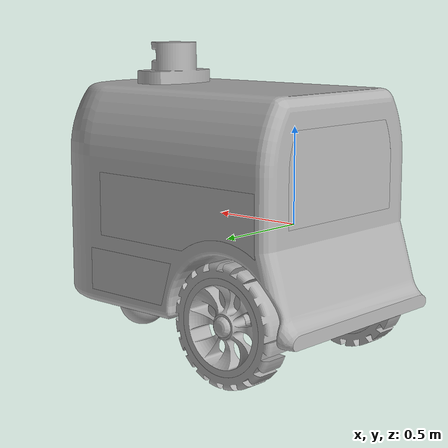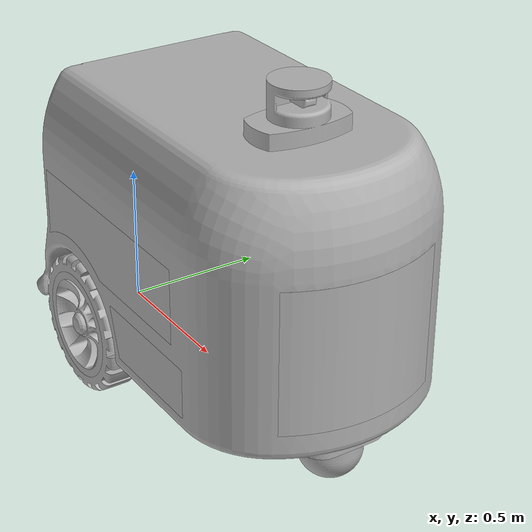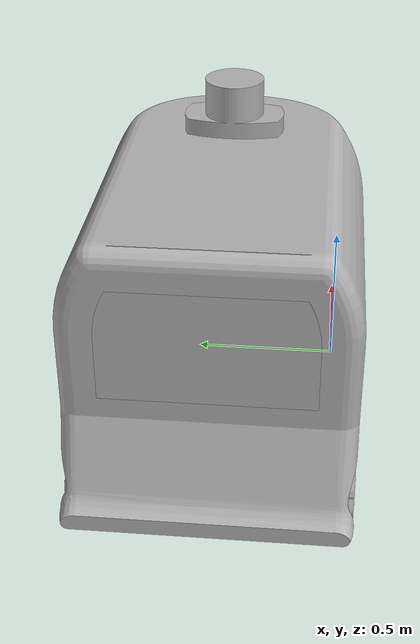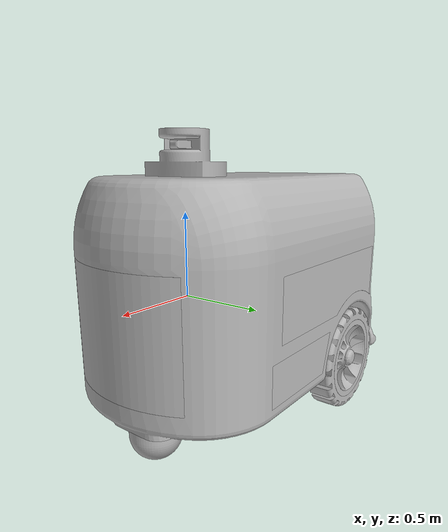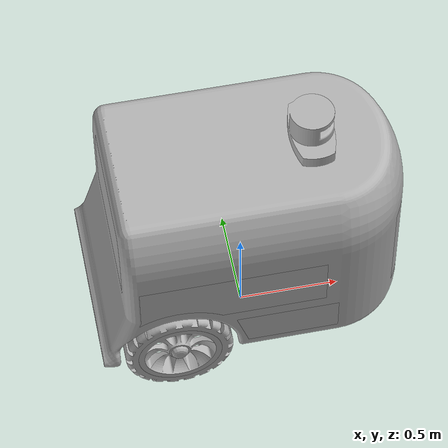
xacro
<?xml version="1.0" ?>
<robot name="mobot" xmlns:xacro="http://www.ros.org/wiki/xacro">

<xacro:include filename="$(find mobot_description)/urdf/materials.xacro" />
<xacro:include filename="$(find mobot_description)/urdf/mobot.trans" />
<xacro:include filename="$(find mobot_description)/urdf/mobot.gazebo" />

<link name="dummy">
</link>

<link name="base_link">
  <inertial>
    <origin rpy="0 0 0" xyz="-0.026455219422411323 0.40968939827626377 0.04163234966670218"/>
    <mass value="3150.9106588680847"/>
    <inertia ixx="635.995618" ixy="-0.81772" ixz="-67.456188" iyy="1022.549178" iyz="-0.044342" izz="982.507872"/>
  </inertial>
  <visual>
    <origin rpy="0 0 0" xyz="0 0 0"/>
    <geometry>
      <mesh filename="package://mobot_description/meshes/base_link.stl" scale="0.001 0.001 0.001"/>
    </geometry>
    <material name="silver"/>
  </visual>
  <collision>
    <origin rpy="0 0 0" xyz="0 0 0"/>
    <geometry>
      <mesh filename="package://mobot_description/meshes/base_link.stl" scale="0.001 0.001 0.001"/>
    </geometry>
  </collision>
</link>

<link name="wh_2_1">
  <inertial>
    <origin rpy="0 0 0" xyz="3.1312147969753124e-05 -0.04374636663590059 0.00010103681154749466"/>
    <mass value="22.585878116572662"/>
    <inertia ixx="0.392865" ixy="7e-06" ixz="8.3e-05" iyy="0.740577" iyz="-0.0" izz="0.392894"/>
  </inertial>
  <visual>
    <origin rpy="0 0 0" xyz="0.336826 -0.903121 0.27965"/>
    <geometry>
      <mesh filename="package://mobot_description/meshes/wh_2_1.stl" scale="0.001 0.001 0.001"/>
    </geometry>
    <material name="silver"/>
  </visual>
  <collision>
    <origin rpy="0 0 0" xyz="0.336826 -0.903121 0.27965"/>
    <geometry>
      <mesh filename="package://mobot_description/meshes/wh_2_1.stl" scale="0.001 0.001 0.001"/>
    </geometry>
  </collision>
</link>

<link name="wh_1_1">
  <inertial>
    <origin rpy="0 0 0" xyz="3.1300030676417734e-05 0.043746268411519205 0.00010103050810311709"/>
    <mass value="22.58582872362095"/>
    <inertia ixx="0.392865" ixy="-7e-06" ixz="8.3e-05" iyy="0.740575" iyz="0.0" izz="0.392893"/>
  </inertial>
  <visual>
    <origin rpy="0 0 0" xyz="0.336826 0.084379 0.27965"/>
    <geometry>
      <mesh filename="package://mobot_description/meshes/wh_1_1.stl" scale="0.001 0.001 0.001"/>
    </geometry>
    <material name="silver"/>
  </visual>
  <collision>
    <origin rpy="0 0 0" xyz="0.336826 0.084379 0.27965"/>
    <geometry>
      <mesh filename="package://mobot_description/meshes/wh_1_1.stl" scale="0.001 0.001 0.001"/>
    </geometry>
  </collision>
</link>

<link name="ty_1_1">
  <inertial>
    <origin rpy="0 0 0" xyz="-4.140859787837847e-07 0.06344168470022572 -2.1716540271610185e-07"/>
    <mass value="1.1469070073401872"/>
    <inertia ixx="0.03685" ixy="0.0" ixz="0.0" iyy="0.070789" iyz="0.0" izz="0.03685"/>
  </inertial>
  <visual>
    <origin rpy="0 0 0" xyz="0.336826 0.103129 0.27965"/>
    <geometry>
      <mesh filename="package://mobot_description/meshes/ty_1_1.stl" scale="0.001 0.001 0.001"/>
    </geometry>
    <material name="silver"/>
  </visual>
  <collision>
    <origin rpy="0 0 0" xyz="0.336826 0.103129 0.27965"/>
    <geometry>
      <mesh filename="package://mobot_description/meshes/ty_1_1.stl" scale="0.001 0.001 0.001"/>
    </geometry>
  </collision>
</link>

<link name="ty_2_1">
  <inertial>
    <origin rpy="0 0 0" xyz="-5.315133068672928e-07 -0.06344178181047777 -1.7160374848890214e-07"/>
    <mass value="1.1469058380153243"/>
    <inertia ixx="0.03685" ixy="-0.0" ixz="0.0" iyy="0.070789" iyz="0.0" izz="0.03685"/>
  </inertial>
  <visual>
    <origin rpy="0 0 0" xyz="0.336826 -0.921871 0.27965"/>
    <geometry>
      <mesh filename="package://mobot_description/meshes/ty_2_1.stl" scale="0.001 0.001 0.001"/>
    </geometry>
    <material name="silver"/>
  </visual>
  <collision>
    <origin rpy="0 0 0" xyz="0.336826 -0.921871 0.27965"/>
    <geometry>
      <mesh filename="package://mobot_description/meshes/ty_2_1.stl" scale="0.001 0.001 0.001"/>
    </geometry>
  </collision>
</link>

<link name="castor_1">
  <inertial>
    <origin rpy="0 0 0" xyz="6.103319483141689e-08 -4.667545749903468e-08 -0.07589255509540493"/>
    <mass value="56.19482952954398"/>
    <inertia ixx="0.316051" ixy="0.0" ixz="0.0" iyy="0.316051" iyz="0.0" izz="0.388848"/>
  </inertial>
  <visual>
    <origin rpy="0 0 0" xyz="-0.68229 -0.409371 0.373403"/>
    <geometry>
      <mesh filename="package://mobot_description/meshes/castor_1.stl" scale="0.001 0.001 0.001"/>
    </geometry>
    <material name="silver"/>
  </visual>
  <collision>
    <origin rpy="0 0 0" xyz="-0.68229 -0.409371 0.373403"/>
    <geometry>
      <mesh filename="package://mobot_description/meshes/castor_1.stl" scale="0.001 0.001 0.001"/>
    </geometry>
  </collision>
</link>

<link name="Lidar_1">
  <inertial>
    <origin rpy="0 0 0" xyz="-0.004649646644218297 -4.128141434245336e-08 0.07900227655614012"/>
    <mass value="69.79790090631205"/>
    <inertia ixx="0.709975" ixy="-0.0" ixz="0.018831" iyy="0.464713" iyz="-0.0" izz="0.691542"/>
  </inertial>
  <visual>
    <origin rpy="0 0 0" xyz="-0.439712 -0.409371 -0.717709"/>
    <geometry>
      <mesh filename="package://mobot_description/meshes/Lidar_1.stl" scale="0.001 0.001 0.001"/>
    </geometry>
    <material name="silver"/>
  </visual>
  <collision>
    <origin rpy="0 0 0" xyz="-0.439712 -0.409371 -0.717709"/>
    <geometry>
      <mesh filename="package://mobot_description/meshes/Lidar_1.stl" scale="0.001 0.001 0.001"/>
    </geometry>
  </collision>
</link>

<link name="fw_1">
  <inertial>
    <origin rpy="0 0 0" xyz="-0.06263561471993406 0.000180168104896683 -0.2841628642191586"/>
    <mass value="28.347081991217703"/>
    <inertia ixx="1.775049" ixy="-0.009746" ixz="-0.0" iyy="0.795658" iyz="-0.0" izz="1.04472"/>
  </inertial>
  <visual>
    <origin rpy="0 0 0" xyz="-0.908977 -0.40367 -0.371549"/>
    <geometry>
      <mesh filename="package://mobot_description/meshes/fw_1.stl" scale="0.001 0.001 0.001"/>
    </geometry>
    <material name="silver"/>
  </visual>
  <collision>
    <origin rpy="0 0 0" xyz="-0.908977 -0.40367 -0.371549"/>
    <geometry>
      <mesh filename="package://mobot_description/meshes/fw_1.stl" scale="0.001 0.001 0.001"/>
    </geometry>
  </collision>
</link>

<link name="bw_1">
  <inertial>
    <origin rpy="0 0 0" xyz="0.006250413681586298 -4.667545805414619e-08 -0.2119126601641136"/>
    <mass value="29.960334499031035"/>
    <inertia ixx="1.766091" ixy="-0.0" ixz="0.0" iyy="0.428193" iyz="0.0" izz="1.338678"/>
  </inertial>
  <visual>
    <origin rpy="0 0 0" xyz="0.598983 -0.409371 -0.578504"/>
    <geometry>
      <mesh filename="package://mobot_description/meshes/bw_1.stl" scale="0.001 0.001 0.001"/>
    </geometry>
    <material name="silver"/>
  </visual>
  <collision>
    <origin rpy="0 0 0" xyz="0.598983 -0.409371 -0.578504"/>
    <geometry>
      <mesh filename="package://mobot_description/meshes/bw_1.stl" scale="0.001 0.001 0.001"/>
    </geometry>
  </collision>
</link>

<link name="sw2_1">
  <inertial>
    <origin rpy="0 0 0" xyz="0.024512866232685143 0.006249953324542382 -0.13941821214026714"/>
    <mass value="25.796768244619983"/>
    <inertia ixx="0.174666" ixy="-0.0" ixz="0.081495" iyy="2.087163" iyz="0.0" izz="1.91317"/>
  </inertial>
  <visual>
    <origin rpy="0 0 0" xyz="0.052952 0.103129 -0.326635"/>
    <geometry>
      <mesh filename="package://mobot_description/meshes/sw2_1.stl" scale="0.001 0.001 0.001"/>
    </geometry>
    <material name="silver"/>
  </visual>
  <collision>
    <origin rpy="0 0 0" xyz="0.052952 0.103129 -0.326635"/>
    <geometry>
      <mesh filename="package://mobot_description/meshes/sw2_1.stl" scale="0.001 0.001 0.001"/>
    </geometry>
  </collision>
</link>

<link name="sw1_1">
  <inertial>
    <origin rpy="0 0 0" xyz="0.024512866232685133 -0.006250046675457477 -0.13941821214026712"/>
    <mass value="25.796768244620132"/>
    <inertia ixx="0.174666" ixy="0.0" ixz="0.081495" iyy="2.087163" iyz="0.0" izz="1.91317"/>
  </inertial>
  <visual>
    <origin rpy="0 0 0" xyz="0.052952 -0.921871 -0.326635"/>
    <geometry>
      <mesh filename="package://mobot_description/meshes/sw1_1.stl" scale="0.001 0.001 0.001"/>
    </geometry>
    <material name="silver"/>
  </visual>
  <collision>
    <origin rpy="0 0 0" xyz="0.052952 -0.921871 -0.326635"/>
    <geometry>
      <mesh filename="package://mobot_description/meshes/sw1_1.stl" scale="0.001 0.001 0.001"/>
    </geometry>
  </collision>
</link>

<link name="sd1_1">
  <inertial>
    <origin rpy="0 0 0" xyz="0.015202593766192568 -0.006250046675457477 -0.09922891411246615"/>
    <mass value="9.970459309140876"/>
    <inertia ixx="0.034204" ixy="0.0" ixz="0.00522" iyy="0.244584" iyz="-0.0" izz="0.210639"/>
  </inertial>
  <visual>
    <origin rpy="0 0 0" xyz="-0.226839 -0.921871 0.041915"/>
    <geometry>
      <mesh filename="package://mobot_description/meshes/sd1_1.stl" scale="0.001 0.001 0.001"/>
    </geometry>
    <material name="silver"/>
  </visual>
  <collision>
    <origin rpy="0 0 0" xyz="-0.226839 -0.921871 0.041915"/>
    <geometry>
      <mesh filename="package://mobot_description/meshes/sd1_1.stl" scale="0.001 0.001 0.001"/>
    </geometry>
  </collision>
</link>

<link name="sd2_1">
  <inertial>
    <origin rpy="0 0 0" xyz="0.01520259376619254 0.006249953324542382 -0.09922891411246618"/>
    <mass value="9.97045930914082"/>
    <inertia ixx="0.034204" ixy="-0.0" ixz="0.00522" iyy="0.244584" iyz="0.0" izz="0.210639"/>
  </inertial>
  <visual>
    <origin rpy="0 0 0" xyz="-0.226839 0.103129 0.041915"/>
    <geometry>
      <mesh filename="package://mobot_description/meshes/sd2_1.stl" scale="0.001 0.001 0.001"/>
    </geometry>
    <material name="silver"/>
  </visual>
  <collision>
    <origin rpy="0 0 0" xyz="-0.226839 0.103129 0.041915"/>
    <geometry>
      <mesh filename="package://mobot_description/meshes/sd2_1.stl" scale="0.001 0.001 0.001"/>
    </geometry>
  </collision>
</link>

<joint name="Rev1" type="continuous">
  <origin rpy="0 0 0" xyz="-0.336826 0.903121 -0.27965"/>
  <parent link="base_link"/>
  <child link="wh_2_1"/>
  <axis xyz="0.0 1.0 0.0"/>
</joint>

<joint name="Rev2" type="continuous">
  <origin rpy="0 0 0" xyz="-0.336826 -0.084379 -0.27965"/>
  <parent link="base_link"/>
  <child link="wh_1_1"/>
  <axis xyz="0.0 1.0 0.0"/>
</joint>

<joint name="Rigid3" type="fixed">
  <origin rpy="0 0 0" xyz="0.0 -0.01875 0.0"/>
  <parent link="wh_1_1"/>
  <child link="ty_1_1"/>
</joint>

<joint name="Rigid4" type="fixed">
  <origin rpy="0 0 0" xyz="0.0 0.01875 0.0"/>
  <parent link="wh_2_1"/>
  <child link="ty_2_1"/>
</joint>

<joint name="Rigid5" type="fixed">
  <origin rpy="0 0 0" xyz="0.68229 0.409371 -0.373403"/>
  <parent link="base_link"/>
  <child link="castor_1"/>
</joint>

<joint name="Rigid6" type="fixed">
  <origin rpy="0 0 0" xyz="0.439712 0.409371 0.717709"/>
  <parent link="base_link"/>
  <child link="Lidar_1"/>
</joint>

<joint name="Rigid7" type="fixed">
  <origin rpy="0 0 0" xyz="0.908977 0.40367 0.371549"/>
  <parent link="base_link"/>
  <child link="fw_1"/>
</joint>

<joint name="Rigid8" type="fixed">
  <origin rpy="0 0 0" xyz="-0.598983 0.409371 0.578504"/>
  <parent link="base_link"/>
  <child link="bw_1"/>
</joint>

<joint name="Rigid9" type="fixed">
  <origin rpy="0 0 0" xyz="-0.052952 -0.103129 0.326635"/>
  <parent link="base_link"/>
  <child link="sw2_1"/>
</joint>

<joint name="Rigid10" type="fixed">
  <origin rpy="0 0 0" xyz="-0.052952 0.921871 0.326635"/>
  <parent link="base_link"/>
  <child link="sw1_1"/>
</joint>

<joint name="Rigid11" type="fixed">
  <origin rpy="0 0 0" xyz="0.226839 0.921871 -0.041915"/>
  <parent link="base_link"/>
  <child link="sd1_1"/>
</joint>

<joint name="Rigid12" type="fixed">
  <origin rpy="0 0 0" xyz="0.226839 -0.103129 -0.041915"/>
  <parent link="base_link"/>
  <child link="sd2_1"/>
</joint>

<joint name="dummy_joint" type="fixed">
     <parent link="dummy"/>
     <child link="base_link"/>
</joint>

</robot>

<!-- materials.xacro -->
<robot name="mobot" xmlns:xacro="http://www.ros.org/wiki/xacro" >

<material name="silver">
  <color rgba="0.700 0.700 0.700 1.000"/>
</material>

</robot>

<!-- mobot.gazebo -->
<robot name="mobot" xmlns:xacro="http://www.ros.org/wiki/xacro" >

<xacro:property name="body" value="Gazebo/Red" />
<xacro:property name="wheel" value="Gazebo/Chrome" />
<xacro:property name="tyre" value="Gazebo/Black" />
<xacro:property name="fw" value="Gazebo/GreenTransparent " />
<xacro:property name="bw" value="Gazebo/GreenTransparent " />
<xacro:property name="sw" value="Gazebo/GreenTransparent " />
<xacro:property name="sw2" value="Gazebo/GreenTransparent " />
<xacro:property name="sd" value="Gazebo/Black" />
<xacro:property name="sd2" value="Gazebo/RedTransparent" />
<xacro:property name="castor" value="Gazebo/Silver" />
<xacro:property name="lidar" value="Gazebo/Black" />

<gazebo reference="base_link">
  <material>${body}</material>
  <mu1>0.2</mu1>
  <mu2>0.2</mu2>
  <selfCollide>true</selfCollide>
  <gravity>true</gravity>
</gazebo>

<gazebo reference="wh_2_1">
  <material>${wheel}</material>
  <mu1>0.2</mu1>
  <mu2>0.2</mu2>
  <selfCollide>true</selfCollide>
</gazebo>

<gazebo reference="wh_1_1">
  <material>${wheel}</material>
  <mu1>0.2</mu1>
  <mu2>0.2</mu2>
  <selfCollide>true</selfCollide>
</gazebo>

<gazebo reference="ty_1_1">
  <material>${tyre}</material>
  <mu1>1</mu1>
  <mu2>1</mu2>
  <selfCollide>true</selfCollide>
</gazebo>

<gazebo reference="ty_2_1">
  <material>${tyre}</material>
  <mu1>1</mu1>
  <mu2>1</mu2>
  <selfCollide>true</selfCollide>
</gazebo>

<gazebo reference="castor_1">
  <material>${castor}</material>
  <mu1>0.2</mu1>
  <mu2>0.2</mu2>
  <selfCollide>true</selfCollide>
</gazebo>

<gazebo reference="Lidar_1">
  <material>${lidar}</material>
  <mu1>0.2</mu1>
  <mu2>0.2</mu2>
  <selfCollide>true</selfCollide>
</gazebo>

<gazebo reference="fw_1">
  <material>${fw}</material>
  <mu1>0.2</mu1>
  <mu2>0.2</mu2>
  <selfCollide>true</selfCollide>
</gazebo>

<gazebo reference="sw1_1">
  <material>${sw}</material>
  <mu1>0.2</mu1>
  <mu2>0.2</mu2>
  <selfCollide>true</selfCollide>
</gazebo>

<gazebo reference="sd1_1">
  <material>${sd}</material>
  <mu1>0.2</mu1>
  <mu2>0.2</mu2>
  <selfCollide>true</selfCollide>
</gazebo>

<gazebo reference="sw2_1">
  <material>${sw}</material>
  <mu1>0.2</mu1>
  <mu2>0.2</mu2>
  <selfCollide>true</selfCollide>
</gazebo>

<gazebo reference="sd2_1">
  <material>${sd}</material>
  <mu1>0.2</mu1>
  <mu2>0.2</mu2>
  <selfCollide>true</selfCollide>
</gazebo>

<gazebo reference="bw_1">
  <material>${bw}</material>
  <mu1>0.2</mu1>
  <mu2>0.2</mu2>
  <selfCollide>true</selfCollide>
</gazebo>

<gazebo>
  <plugin filename="libgazebo_ros_control.so" name="control">
  <robotNamespace>/mobot</robotNamespace>
  <robotSimType>gazebo_ros_control/DefaultRobotHWSim</robotSimType>
  </plugin>
</gazebo>

<!-- laser plugin -->
<gazebo reference="fw_1">
    <sensor type="ray" name="head_hokuyo_sensor">
      <pose>0 0 0 0 0 0</pose>
      <visualize>true</visualize>
      <update_rate>10</update_rate>
      <ray>
        <scan>
          <horizontal>
            <samples>720</samples>
            <resolution>1</resolution>
            <min_angle>-1.570796</min_angle>
            <max_angle>1.570796</max_angle>
          </horizontal>
        </scan>
        <range>
          <min>0.10</min>
          <max>30.0</max>
          <resolution>0.01</resolution>
        </range>
        <noise>
          <type>gaussian</type>

          <mean>0.0</mean>
          <stddev>0.01</stddev>
        </noise>
      </ray>

      <plugin name="gazebo_ros_head_hokuyo_controller" filename="libgazebo_ros_laser.so">
        <topicName>/scan</topicName>
        <frameName>fw_1</frameName>
      </plugin>
    </sensor>
  </gazebo>

</robot>
